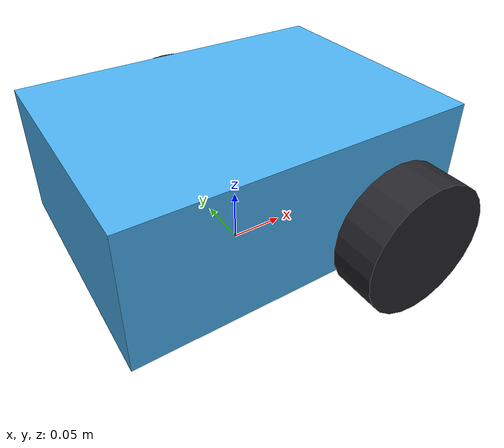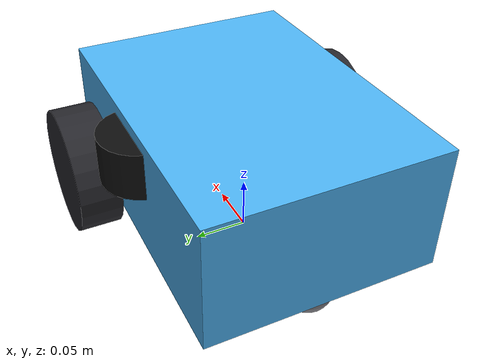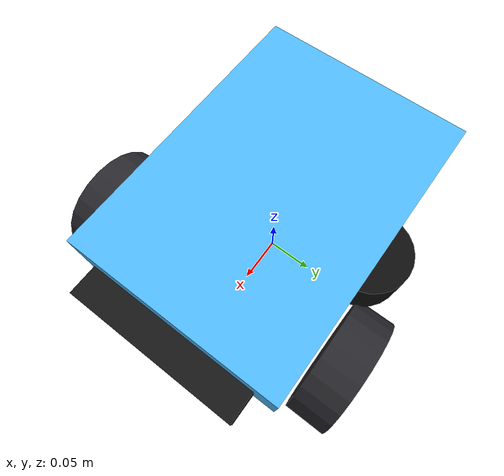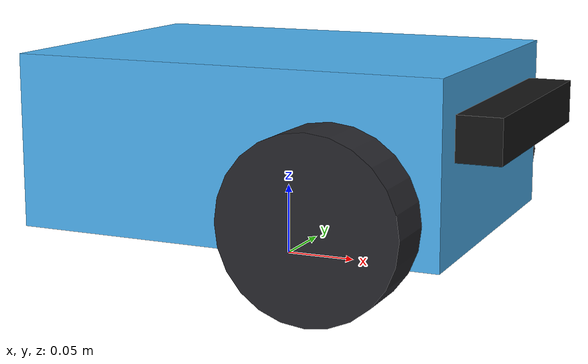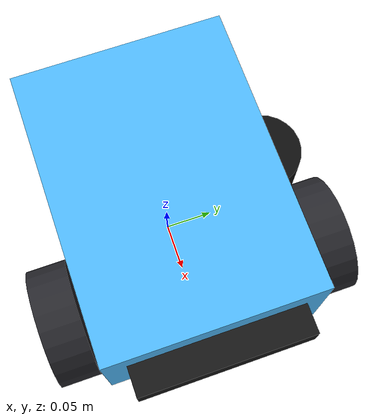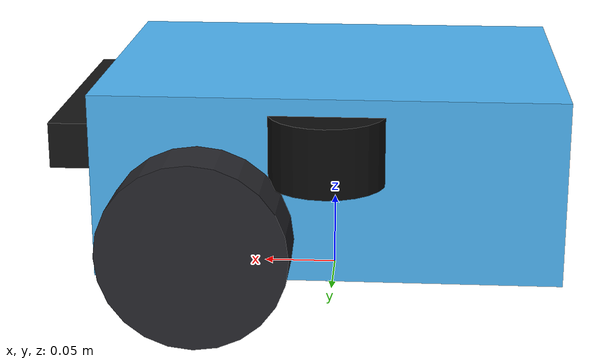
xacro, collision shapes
<?xml version="1.0"?>
<robot name="two_wheel_robot" xmlns:xacro="http://www.ros.org/wiki/xacro">
<xacro:include filename="$(find robot_description)/urdf/robot_description.gazebo"/>

  <!-- Chassis -->
  <xacro:property name="base_length"   value="0.30"/>
  <xacro:property name="base_width"    value="0.22"/>
  <xacro:property name="base_height"   value="0.10"/>
  <xacro:property name="base_mass"     value="2.5"/>

  <!-- Wheels -->
  <xacro:property name="wheel_radius"  value="0.06"/>
  <xacro:property name="wheel_width"   value="0.04"/>
  <xacro:property name="wheel_mass"    value="0.25"/>
  <xacro:property name="wheel_gap"     value="0.005"/>

  <!-- Caster wheel (rear, ball caster) -->
  <xacro:property name="caster_radius" value="0.025"/>
  <xacro:property name="caster_mass"   value="0.06"/>
  <xacro:property name="caster_x"      value="-0.12"/>

  <!-- Ground clearance = wheel radius, since base_link sits at wheel-center height -->
  <xacro:property name="base_z"        value="${wheel_radius}"/>

  <!-- Sensors -->
  <xacro:property name="lidar_mass"        value="0.19"/>
  <xacro:property name="lidar_radius"      value="0.038"/>
  <xacro:property name="lidar_height"      value="0.045"/>
  <xacro:property name="lidar_mesh_scale"  value="1 1 1"/>
  <xacro:property name="lidar_stand_h"     value="0.03"/>
  <xacro:property name="roof_thickness"    value="0.02"/>

  <xacro:property name="camera_mass"       value="0.16"/>
  <xacro:property name="camera_x_size"     value="0.03"/>
  <xacro:property name="camera_y_size"     value="0.175"/>
  <xacro:property name="camera_z_size"     value="0.03"/>
  <xacro:property name="camera_mesh_scale" value="0.001 0.001 0.001"/>

  <xacro:property name="PI" value="3.14159265"/>

  <!-- MATERIALS -->
  <material name="body_blue">   <color rgba="0.30 0.70 0.95 1.0"/></material>
  <material name="cream_white"> <color rgba="0.97 0.97 0.94 1.0"/></material>
  <material name="soft_black">  <color rgba="0.10 0.10 0.10 1.0"/></material>
  <material name="tire_dark">   <color rgba="0.15 0.15 0.17 1.0"/></material>
  <material name="hub_white">   <color rgba="0.95 0.95 0.95 1.0"/></material>
  <material name="sun_yellow">  <color rgba="1.00 0.80 0.10 1.0"/></material>
  <material name="caster_grey"> <color rgba="0.55 0.55 0.58 1.0"/></material>
  <material name="lidar_black"> <color rgba="0.05 0.05 0.05 1.0"/></material>
  <material name="cam_black">   <color rgba="0.08 0.08 0.08 1.0"/></material>

  <!-- INERTIA MACROS -->
  <xacro:macro name="box_inertial" params="mass x y z ox:=0 oy:=0 oz:=0">
    <inertial>
      <origin xyz="${ox} ${oy} ${oz}" rpy="0 0 0"/>
      <mass value="${mass}"/>
      <inertia ixx="${(1/12)*mass*(y*y+z*z)}" ixy="0.0" ixz="0.0"
               iyy="${(1/12)*mass*(x*x+z*z)}" iyz="0.0"
               izz="${(1/12)*mass*(x*x+y*y)}"/>
    </inertial>
  </xacro:macro>

  <xacro:macro name="cylinder_inertial" params="mass r h ox:=0 oy:=0 oz:=0">
    <inertial>
      <origin xyz="${ox} ${oy} ${oz}" rpy="0 0 0"/>
      <mass value="${mass}"/>
      <inertia ixx="${(1/12)*mass*(3*r*r+h*h)}" ixy="0.0" ixz="0.0"
               iyy="${(1/12)*mass*(3*r*r+h*h)}" iyz="0.0"
               izz="${0.5*mass*r*r}"/>
    </inertial>
  </xacro:macro>

  <xacro:macro name="sphere_inertial" params="mass r ox:=0 oy:=0 oz:=0">
    <inertial>
      <origin xyz="${ox} ${oy} ${oz}" rpy="0 0 0"/>
      <mass value="${mass}"/>
      <inertia ixx="${(2/5)*mass*r*r}" ixy="0.0" ixz="0.0"
               iyy="${(2/5)*mass*r*r}" iyz="0.0"
               izz="${(2/5)*mass*r*r}"/>
    </inertial>
  </xacro:macro>

  <link name="base_footprint"/>

  <joint name="base_footprint_joint" type="fixed">
    <parent link="base_footprint"/>
    <child  link="base_link"/>
    <origin xyz="0 0 ${base_z}" rpy="0 0 0"/>
  </joint>

  <link name="base_link">
    <!-- main rounded body -->
    <visual>
      <origin xyz="0 0 0.02" rpy="0 0 0"/>
      <geometry>
        <box size="${base_length} ${base_width} ${base_height}"/>
      </geometry>
      <material name="body_blue"/>
    </visual>

    <!-- rounded tail (rear) -->
    <visual>
      <origin xyz="${-base_length/2 - 0.005} 0 0.02" rpy="0 1.5708 0"/>
      <geometry>
        <sphere radius="${base_height/2 - 0.005}"/>
      </geometry>
      <material name="body_blue"/>
    </visual>

    <!-- flat roof plate on top of the body (cute, but flat as requested) -->
    <visual>
      <origin xyz="0 0 ${base_height/2 + 0.02 + roof_thickness/2}" rpy="0 0 0"/>
      <geometry>
        <box size="${base_length*0.92} ${base_width*0.92} ${roof_thickness}"/>
      </geometry>
      <material name="cream_white"/>
    </visual>

    <!-- two cute "eyes" on the front edge of the roof -->
    <visual>
      <origin xyz="${base_length/2 - 0.035} 0.06 ${base_height/2 + 0.02 + roof_thickness}" rpy="0 0 0"/>
      <geometry><sphere radius="0.014"/></geometry>
      <material name="soft_black"/>
    </visual>
    <visual>
      <origin xyz="${base_length/2 - 0.035} -0.06 ${base_height/2 + 0.02 + roof_thickness}" rpy="0 0 0"/>
      <geometry><sphere radius="0.014"/></geometry>
      <material name="soft_black"/>
    </visual>

    <!-- small antenna, tucked in the rear-corner of the roof -->
    <visual>
      <origin xyz="${-base_length/2 + 0.04} 0.07 ${base_height/2 + 0.02 + roof_thickness + 0.03}" rpy="0 0 0"/>
      <geometry><cylinder radius="0.004" length="0.06"/></geometry>
      <material name="soft_black"/>
    </visual>
    <visual>
      <origin xyz="${-base_length/2 + 0.04} 0.07 ${base_height/2 + 0.02 + roof_thickness + 0.06}" rpy="0 0 0"/>
      <geometry><sphere radius="0.012"/></geometry>
      <material name="sun_yellow"/>
    </visual>

    <collision>
      <origin xyz="0 0 ${0.02 + roof_thickness/2}" rpy="0 0 0"/>
      <geometry>
        <box size="${base_length} ${base_width} ${base_height + roof_thickness}"/>
      </geometry>
    </collision>
    <xacro:box_inertial mass="${base_mass}" x="${base_length}" y="${base_width}"
                         z="${base_height + roof_thickness}" oz="${0.02 + roof_thickness/2}"/>
  </link>

  <!-- WHEEL MACRO -->
  <xacro:macro name="wheel" params="prefix reflect">
    <link name="${prefix}_wheel_link">
      <visual>
        <origin xyz="0 0 0" rpy="1.5708 0 0"/>
        <geometry>
          <cylinder radius="${wheel_radius}" length="${wheel_width}"/>
        </geometry>
        <material name="tire_dark"/>
      </visual>
      <!-- hub cap detail -->
      <visual>
        <origin xyz="0 ${reflect*(wheel_width/2 + 0.001)} 0" rpy="1.5708 0 0"/>
        <geometry>
          <cylinder radius="${wheel_radius*0.35}" length="0.002"/>
        </geometry>
        <material name="hub_white"/>
      </visual>
      <collision>
        <origin xyz="0 0 0" rpy="1.5708 0 0"/>
        <geometry>
          <cylinder radius="${wheel_radius}" length="${wheel_width}"/>
        </geometry>
      </collision>
      <xacro:cylinder_inertial mass="${wheel_mass}" r="${wheel_radius}" h="${wheel_width}"/>
    </link>

    <joint name="${prefix}_wheel_joint" type="continuous">
      <parent link="base_link"/>
      <child  link="${prefix}_wheel_link"/>
      <origin xyz="0.08 ${reflect*(base_width/2 + wheel_width/2 + wheel_gap)} 0" rpy="0 0 0"/>
      <axis xyz="0 1 0"/>
      <dynamics damping="0.15" friction="0.05"/>
    </joint>
  </xacro:macro>

  <xacro:wheel prefix="left"  reflect="1"/>
  <xacro:wheel prefix="right" reflect="-1"/>

  <!-- CASTER WHEEL -->
  <link name="caster_wheel_link">
    <visual>
      <geometry><sphere radius="${caster_radius}"/></geometry>
      <material name="caster_grey"/>
    </visual>
    <collision>
      <geometry><sphere radius="${caster_radius}"/></geometry>
    </collision>
    <xacro:sphere_inertial mass="${caster_mass}" r="${caster_radius}"/>
  </link>

  <joint name="caster_wheel_joint" type="fixed">
    <parent link="base_link"/>
    <child  link="caster_wheel_link"/>
    <origin xyz="${caster_x} 0 ${caster_radius - wheel_radius}" rpy="0 0 0"/>
  </joint>

  <link name="lidar_link">
    <visual>
      <!-- mesh-only alignment fix (STL's native axes don't match Z-up) -->
      <origin xyz="0 0.1 -0.0936" rpy="1.5708 0 0"/>
      <geometry>
        <mesh filename="package://robot_description/meshes/lidar.STL" scale="${lidar_mesh_scale}"/>
      </geometry>
      <material name="lidar_black"/>
    </visual>
    <collision>
      <!-- our own primitive: axis is genuinely vertical, no mesh quirk to compensate for -->
      <origin xyz="0 0.1 -0.0936" rpy="0 0 0"/>
      <geometry>
        <cylinder radius="${lidar_radius}" length="${lidar_height}"/>
      </geometry>
    </collision>
    <xacro:cylinder_inertial mass="${lidar_mass}" r="${lidar_radius}" h="${lidar_height}" ox="0" oy="0.1" oz="-0.0936"/>
  </link>

  <joint name="lidar_joint" type="fixed">
    <parent link="base_link"/>
    <child  link="lidar_link"/>
    <!-- back to position-only: lidar_link stays Z-up, matching what the sensor expects -->
    <origin xyz="0 0 ${base_height/2 + 0.05 + roof_thickness + lidar_stand_h}" rpy="0 0 0"/>
  </joint>

  <!-- CAMERA : ZED -->
  <link name="zed_camera_link">
    <visual>
      <origin xyz="0 0 0" rpy="0 0 0"/>
      <geometry>
        <mesh filename="package://robot_description/meshes/zed.STL" scale="${camera_mesh_scale}"/>
      </geometry>
      <material name="cam_black"/>
    </visual>
    <collision>
      <origin xyz="0 0 0" rpy="0 0 0"/>
      <geometry>
        <box size="${camera_x_size} ${camera_y_size} ${camera_z_size}"/>
      </geometry>
    </collision>
    <xacro:box_inertial mass="${camera_mass}" x="${camera_x_size}" y="${camera_y_size}" z="${camera_z_size}"/>
  </link>

  <joint name="zed_camera_joint" type="fixed">
    <parent link="base_link"/>
    <child  link="zed_camera_link"/>
    <!-- mounted at the front of the mobile robot, looking forward -->
    <origin xyz="${base_length/2 + 0.016} 0 ${base_height/2}" rpy="0 0 0"/>
  </joint>

  <!-- standard frame for camera optical convention -->
  <link name="zed_camera_optical_frame"/>
  <joint name="zed_camera_optical_joint" type="fixed">
    <parent link="zed_camera_link"/>
    <child  link="zed_camera_optical_frame"/>
    <origin xyz="0 0 0" rpy="${-PI/2} 0 ${-PI/2}"/>
  </joint>

</robot>
